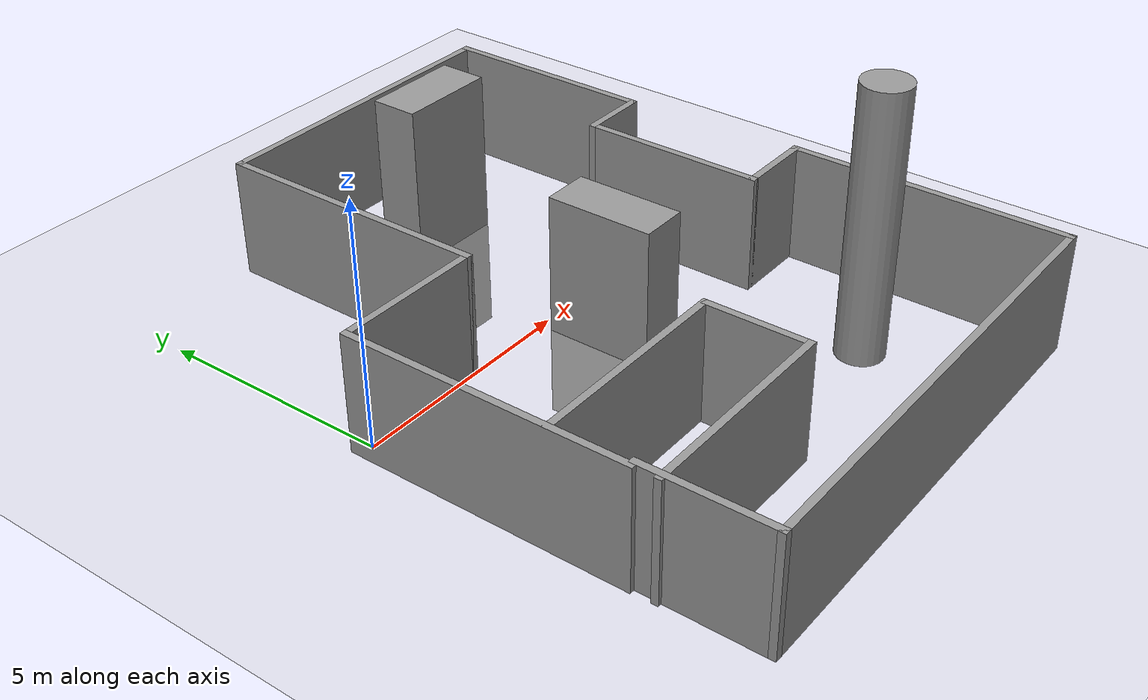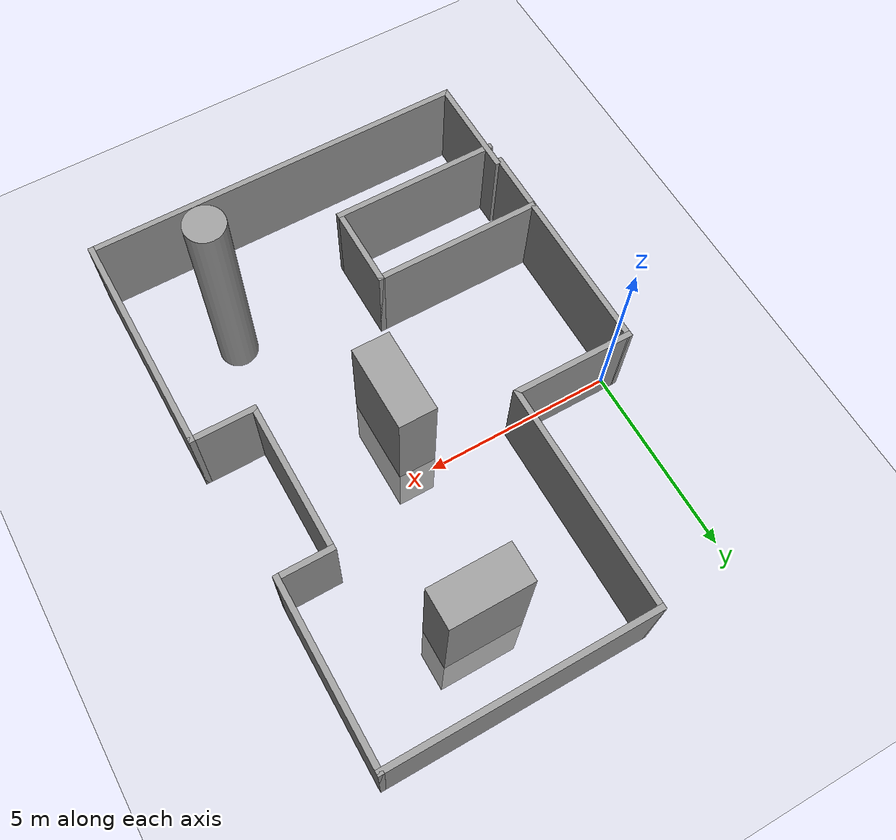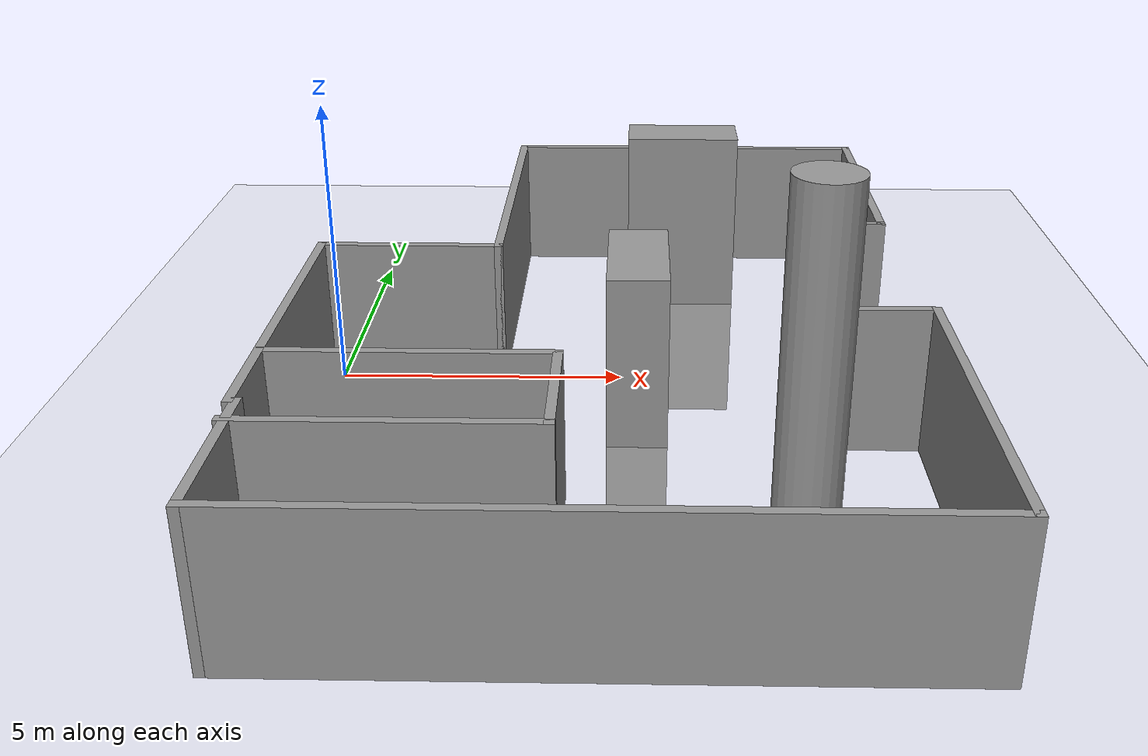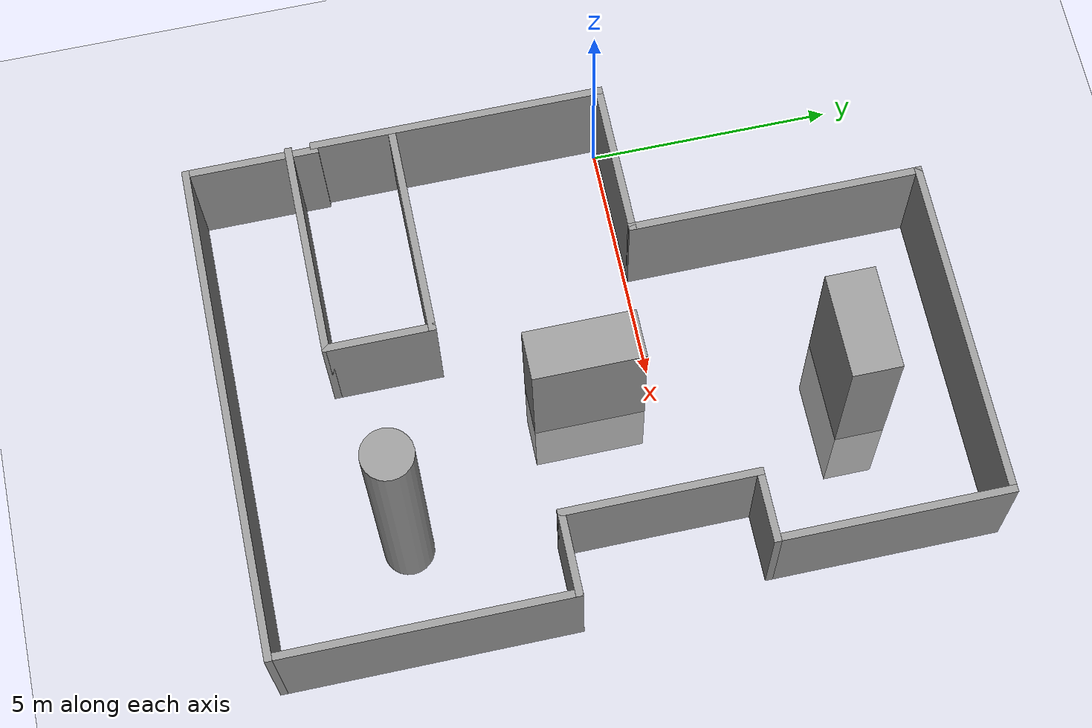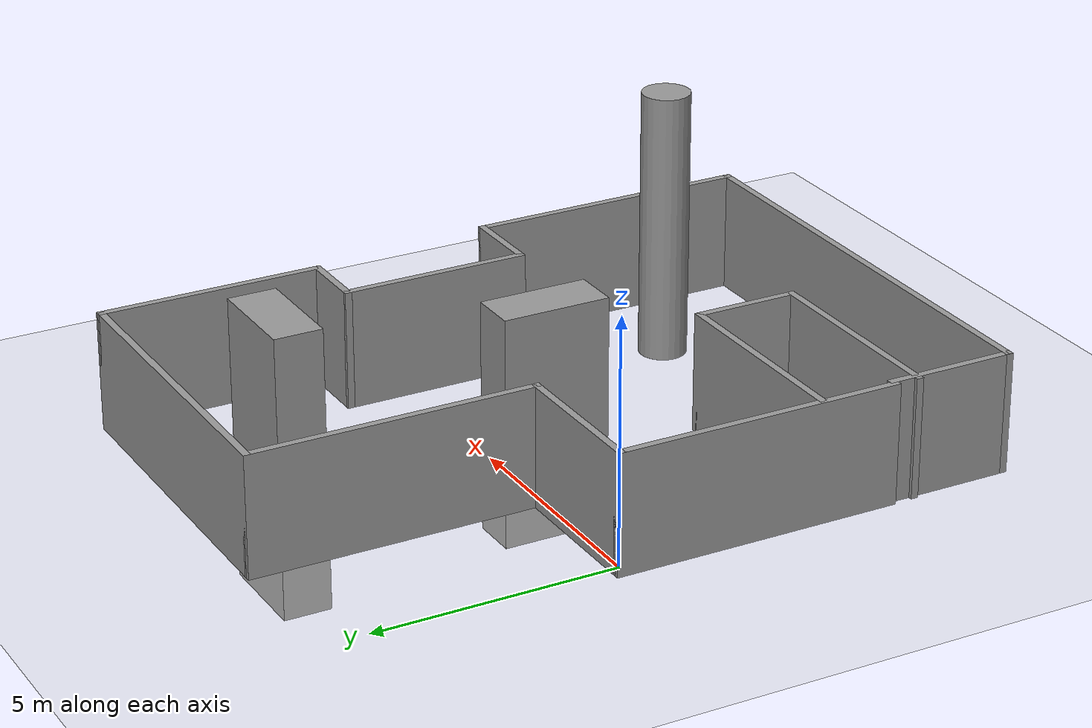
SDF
<sdf version="1.6">
 <world name="default">
  <light name="sun" type="directional">
   <pose>0 0 10 0 -0 0</pose>
   <diffuse>0.8 0.8 0.8 1</diffuse>
   <specular>0.2 0.2 0.2 1</specular>
   <attenuation>
    <range>1000</range>
    <constant>0.9</constant>
    <linear>0.01</linear>
    <quadratic>0.001</quadratic>
   </attenuation>
   <direction>-0.5 0.1 -0.9</direction>
  </light>
  <model name="ground_plane">
   <static>1</static>
   <link name="link">
    <collision name="collision">
     <geometry><plane><normal>0 0 1</normal><size>100 100</size></plane></geometry>
     <surface><friction><ode><mu>100</mu><mu2>50</mu2></ode></friction></surface>
    </collision>
    <visual name="visual">
     <cast_shadows>0</cast_shadows>
     <geometry><plane><normal>0 0 1</normal><size>100 100</size></plane></geometry>
     <material>
      <script><uri>file://media/materials/scripts/gazebo.material</uri><name>Gazebo/Grey</name></script>
     </material>
    </visual>
   </link>
  </model>
  <gravity>0 0 -9.8</gravity>
  <magnetic_field>6e-06 2.3e-05 -4.2e-05</magnetic_field>
  <atmosphere type="adiabatic"/>
  <physics name="default_physics" default="0" type="ode">
   <max_step_size>0.001</max_step_size>
   <real_time_factor>1</real_time_factor>
   <real_time_update_rate>1000</real_time_update_rate>
  </physics>
  <scene><ambient>0.4 0.4 0.4 1</ambient><background>0.7 0.7 0.7 1</background><shadows>1</shadows></scene>
  <spherical_coordinates>
   <surface_model>EARTH_WGS84</surface_model>
   <latitude_deg>0</latitude_deg>
   <longitude_deg>0</longitude_deg>
   <elevation>0</elevation>
   <heading_deg>0</heading_deg>
  </spherical_coordinates>
  <model name="irc_world">
   <pose>4.86 -1.16 0 0 -0 0</pose>
   <link name="Wall_1">
    <collision name="Wall_1_Collision">
     <geometry><box><size>6 0.15 2.5</size></box></geometry>
     <pose>0 0 1.25 0 -0 0</pose>
    </collision>
    <visual name="Wall_1_Visual">
     <pose>0 0 1.25 0 -0 0</pose>
     <geometry><box><size>6 0.15 2.5</size></box></geometry>
     <material>
      <script><uri>file://media/materials/scripts/gazebo.material</uri><name>Gazebo/Grey</name></script>
      <ambient>0 0 0 1</ambient>
     </material>
     <meta><layer>0</layer></meta>
    </visual>
    <pose>-5.1 -1.625 0 0 -0 1.5708</pose>
   </link>
   <link name="Wall_10">
    <collision name="Wall_10_Collision">
     <geometry><box><size>10.25 0.15 2.5</size></box></geometry>
     <pose>0 0 1.25 0 -0 0</pose>
    </collision>
    <visual name="Wall_10_Visual">
     <pose>0 0 1.25 0 -0 0</pose>
     <geometry><box><size>10.25 0.15 2.5</size></box></geometry>
     <material>
      <script><uri>file://media/materials/scripts/gazebo.material</uri><name>Gazebo/Grey</name></script>
      <ambient>0 0 0 1</ambient>
     </material>
     <meta><layer>0</layer></meta>
    </visual>
    <pose>0.05 -7.15 0 0 -0 3.14159</pose>
   </link>
   <link name="Wall_11">
    <collision name="Wall_11_Collision">
     <geometry><box><size>2.75 0.15 2.5</size></box></geometry>
     <pose>0 0 1.25 0 -0 0</pose>
    </collision>
    <visual name="Wall_11_Visual">
     <pose>0 0 1.25 0 -0 0</pose>
     <geometry><box><size>2.75 0.15 2.5</size></box></geometry>
     <material>
      <script><uri>file://media/materials/scripts/gazebo.material</uri><name>Gazebo/Grey</name></script>
      <ambient>0 0 0 1</ambient>
     </material>
     <meta><layer>0</layer></meta>
    </visual>
    <pose>-5 -5.85 0 0 -0 1.5708</pose>
   </link>
   <link name="Wall_14">
    <collision name="Wall_14_Collision">
     <geometry><box><size>4.5 0.15 2.5</size></box></geometry>
     <pose>0 0 1.25 0 -0 0</pose>
    </collision>
    <visual name="Wall_14_Visual">
     <pose>0 0 1.25 0 -0 0</pose>
     <geometry><box><size>4.5 0.15 2.5</size></box></geometry>
     <material>
      <script><uri>file://media/materials/scripts/gazebo.material</uri><name>Gazebo/Grey</name></script>
      <ambient>0 0 0 1</ambient>
     </material>
     <meta><layer>0</layer></meta>
    </visual>
    <pose>-2.90003 -2.9669 0 0 -0 0</pose>
   </link>
   <link name="Wall_15">
    <collision name="Wall_15_Collision">
     <geometry><box><size>2.25 0.15 2.5</size></box></geometry>
     <pose>0 0 1.25 0 -0 0</pose>
    </collision>
    <visual name="Wall_15_Visual">
     <pose>0 0 1.25 0 -0 0</pose>
     <geometry><box><size>2.25 0.15 2.5</size></box></geometry>
     <material>
      <script><uri>file://media/materials/scripts/gazebo.material</uri><name>Gazebo/Grey</name></script>
      <ambient>0 0 0 1</ambient>
     </material>
     <meta><layer>0</layer></meta>
    </visual>
    <pose>-0.725027 -4.0169 0 0 0 -1.5708</pose>
   </link>
   <link name="Wall_16">
    <collision name="Wall_16_Collision">
     <geometry><box><size>4.5 0.15 2.5</size></box></geometry>
     <pose>0 0 1.25 0 -0 0</pose>
    </collision>
    <visual name="Wall_16_Visual">
     <pose>0 0 1.25 0 -0 0</pose>
     <geometry><box><size>4.5 0.15 2.5</size></box></geometry>
     <material>
      <script><uri>file://media/materials/scripts/gazebo.material</uri><name>Gazebo/Grey</name></script>
      <ambient>0 0 0 1</ambient>
     </material>
     <meta><layer>0</layer></meta>
    </visual>
    <pose>-2.90003 -5.0669 0 0 -0 3.14159</pose>
   </link>
   <link name="Wall_2">
    <collision name="Wall_2_Collision">
     <geometry><box><size>3.25 0.15 2.5</size></box></geometry>
     <pose>0 0 1.25 0 -0 0</pose>
    </collision>
    <visual name="Wall_2_Visual">
     <pose>0 0 1.25 0 -0 0</pose>
     <geometry><box><size>3.25 0.15 2.5</size></box></geometry>
     <material>
      <script><uri>file://media/materials/scripts/gazebo.material</uri><name>Gazebo/Grey</name></script>
      <ambient>0 0 0 1</ambient>
     </material>
     <meta><layer>0</layer></meta>
    </visual>
    <pose>-3.55 1.3 0 0 -0 0</pose>
   </link>
   <link name="Wall_3">
    <collision name="Wall_3_Collision">
     <geometry><box><size>6 0.15 2.5</size></box></geometry>
     <pose>0 0 1.25 0 -0 0</pose>
    </collision>
    <visual name="Wall_3_Visual">
     <pose>0 0 1.25 0 -0 0</pose>
     <geometry><box><size>6 0.15 2.5</size></box></geometry>
     <material>
      <script><uri>file://media/materials/scripts/gazebo.material</uri><name>Gazebo/Grey</name></script>
      <ambient>0 0 0 1</ambient>
     </material>
     <meta><layer>0</layer></meta>
    </visual>
    <pose>-2 4.225 0 0 -0 1.5708</pose>
   </link>
   <link name="Wall_4">
    <collision name="Wall_4_Collision">
     <geometry><box><size>7 0.15 2.5</size></box></geometry>
     <pose>0 0 1.25 0 -0 0</pose>
    </collision>
    <visual name="Wall_4_Visual">
     <pose>0 0 1.25 0 -0 0</pose>
     <geometry><box><size>7 0.15 2.5</size></box></geometry>
     <material>
      <script><uri>file://media/materials/scripts/gazebo.material</uri><name>Gazebo/Grey</name></script>
      <ambient>0 0 0 1</ambient>
     </material>
     <meta><layer>0</layer></meta>
    </visual>
    <pose>1.425 7.15 0 0 -0 0</pose>
   </link>
   <link name="Wall_5">
    <collision name="Wall_5_Collision">
     <geometry><box><size>4.75 0.15 2.5</size></box></geometry>
     <pose>0 0 1.25 0 -0 0</pose>
    </collision>
    <visual name="Wall_5_Visual">
     <pose>0 0 1.25 0 -0 0</pose>
     <geometry><box><size>4.75 0.15 2.5</size></box></geometry>
     <material>
      <script><uri>file://media/materials/scripts/gazebo.material</uri><name>Gazebo/Grey</name></script>
      <ambient>0 0 0 1</ambient>
     </material>
     <meta><layer>0</layer></meta>
    </visual>
    <pose>4.85 4.85 0 0 0 -1.5708</pose>
   </link>
   <link name="Wall_6">
    <collision name="Wall_6_Collision">
     <geometry><box><size>1.5 0.15 2.5</size></box></geometry>
     <pose>0 0 1.25 0 -0 0</pose>
    </collision>
    <visual name="Wall_6_Visual">
     <pose>0 0 1.25 0 -0 0</pose>
     <geometry><box><size>1.5 0.15 2.5</size></box></geometry>
     <material>
      <script><uri>file://media/materials/scripts/gazebo.material</uri><name>Gazebo/Grey</name></script>
      <ambient>1 1 1 1</ambient>
     </material>
     <meta><layer>0</layer></meta>
    </visual>
    <pose>4.175 2.55 0 0 -0 3.14159</pose>
   </link>
   <link name="Wall_7">
    <collision name="Wall_7_Collision">
     <geometry><box><size>4 0.15 2.5</size></box></geometry>
     <pose>0 0 1.25 0 -0 0</pose>
    </collision>
    <visual name="Wall_7_Visual">
     <pose>0 0 1.25 0 -0 0</pose>
     <geometry><box><size>4 0.15 2.5</size></box></geometry>
     <material>
      <script><uri>file://media/materials/scripts/gazebo.material</uri><name>Gazebo/Grey</name></script>
      <ambient>0 0 0 1</ambient>
     </material>
     <meta><layer>0</layer></meta>
    </visual>
    <pose>3.5 0.625 0 0 0 -1.5708</pose>
   </link>
   <link name="Wall_8">
    <collision name="Wall_8_Collision">
     <geometry><box><size>1.75 0.15 2.5</size></box></geometry>
     <pose>0 0 1.25 0 -0 0</pose>
    </collision>
    <visual name="Wall_8_Visual">
     <pose>0 0 1.25 0 -0 0</pose>
     <geometry><box><size>1.75 0.15 2.5</size></box></geometry>
     <material>
      <script><uri>file://media/materials/scripts/gazebo.material</uri><name>Gazebo/Grey</name></script>
      <ambient>0 0 0 1</ambient>
     </material>
     <meta><layer>0</layer></meta>
    </visual>
    <pose>4.3 -1.3 0 0 -0 0</pose>
   </link>
   <link name="Wall_9">
    <collision name="Wall_9_Collision">
     <geometry><box><size>6 0.15 2.5</size></box></geometry>
     <pose>0 0 1.25 0 -0 0</pose>
    </collision>
    <visual name="Wall_9_Visual">
     <pose>0 0 1.25 0 -0 0</pose>
     <geometry><box><size>6 0.15 2.5</size></box></geometry>
     <material>
      <script><uri>file://media/materials/scripts/gazebo.material</uri><name>Gazebo/Grey</name></script>
      <ambient>1 1 1 1</ambient>
     </material>
     <meta><layer>0</layer></meta>
    </visual>
    <pose>5.1 -4.225 0 0 0 -1.5708</pose>
   </link>
   <static>1</static>
  </model>
  <model name="unit_cylinder_evan">
   <link name="link">
    <inertial>
     <mass>5.66475</mass>
     <inertia><ixx>15.5022</ixx><ixy>0</ixy><ixz>0</ixz><iyy>15.5022</iyy><iyz>0</iyz><izz>0.708094</izz></inertia>
    </inertial>
    <visual name="visual">
     <geometry><cylinder><radius>0.5</radius><length>5.66476</length></cylinder></geometry>
     <material>
      <script><name>Gazebo/Grey</name><uri>file://media/materials/scripts/gazebo.material</uri></script>
      <ambient>0.3 0.3 0.3 1</ambient>
      <diffuse>0.7 0.7 0.7 1</diffuse>
      <specular>0.01 0.01 0.01 1</specular>
      <emissive>0 0 0 1</emissive>
      <shader type="vertex"><normal_map>__default__</normal_map></shader>
     </material>
    </visual>
    <collision name="collision">
     <geometry><cylinder><radius>0.5</radius><length>5.66476</length></cylinder></geometry>
     <surface>
      <friction>
       <ode><mu>1</mu><mu2>1</mu2><fdir1>0 0 0</fdir1><slip1>0</slip1><slip2>0</slip2></ode>
       <torsional>
        <coefficient>1</coefficient>
        <patch_radius>0</patch_radius>
        <surface_radius>0</surface_radius>
        <use_patch_radius>1</use_patch_radius>
        <ode><slip>0</slip></ode>
       </torsional>
      </friction>
      <bounce><restitution_coefficient>0</restitution_coefficient><threshold>1e+06</threshold></bounce>
      <contact>
       <collide_without_contact>0</collide_without_contact>
       <collide_without_contact_bitmask>1</collide_without_contact_bitmask>
       <collide_bitmask>1</collide_bitmask>
       <ode>
        <soft_cfm>0</soft_cfm>
        <soft_erp>0.2</soft_erp>
        <kp>1e+13</kp>
        <kd>1</kd>
        <max_vel>0.01</max_vel>
        <min_depth>0</min_depth>
       </ode>
       <bullet>
        <split_impulse>1</split_impulse>
        <split_impulse_penetration_threshold>-0.01</split_impulse_penetration_threshold>
        <soft_cfm>0</soft_cfm>
        <soft_erp>0.2</soft_erp>
        <kp>1e+13</kp>
        <kd>1</kd>
       </bullet>
      </contact>
     </surface>
    </collision>
   </link>
   <static>0</static>
   <pose>7.69009 -5.41105 2.83237 0 0 -2e-06</pose>
  </model>
  <model name="a_box">
   <link name="link_0">
    <pose>0.43035 2.62467 0 0 -0 0</pose>
    <inertial>
     <mass>12.4039</mass>
     <inertia><ixx>36.9232</ixx><ixy>0</ixy><ixz>0</ixz><iyy>40.4699</iyy><iyz>0</iyz><izz>5.61401</izz></inertia>
    </inertial>
    <visual name="visual">
     <geometry><box><size>2.10504 1 5.89246</size></box></geometry>
     <material>
      <lighting>1</lighting>
      <script><uri>file://media/materials/scripts/gazebo.material</uri><name>Gazebo/Grey</name></script>
      <ambient>0.3 0.3 0.3 1</ambient>
      <diffuse>0.7 0.7 0.7 1</diffuse>
      <specular>0.01 0.01 0.01 1</specular>
      <emissive>0 0 0 1</emissive>
      <shader type="vertex"><normal_map>__default__</normal_map></shader>
     </material>
    </visual>
    <collision name="collision">
     <geometry><box><size>2.10504 1 5.89246</size></box></geometry>
     <surface>
      <friction>
       <ode><mu>1</mu><mu2>1</mu2><fdir1>0 0 0</fdir1><slip1>0</slip1><slip2>0</slip2></ode>
       <torsional>
        <coefficient>1</coefficient>
        <patch_radius>0</patch_radius>
        <surface_radius>0</surface_radius>
        <use_patch_radius>1</use_patch_radius>
        <ode><slip>0</slip></ode>
       </torsional>
      </friction>
      <bounce><restitution_coefficient>0</restitution_coefficient><threshold>1e+06</threshold></bounce>
      <contact>
       <collide_without_contact>0</collide_without_contact>
       <collide_without_contact_bitmask>1</collide_without_contact_bitmask>
       <collide_bitmask>1</collide_bitmask>
       <ode>
        <soft_cfm>0</soft_cfm>
        <soft_erp>0.2</soft_erp>
        <kp>1e+13</kp>
        <kd>1</kd>
        <max_vel>0.01</max_vel>
        <min_depth>0</min_depth>
       </ode>
       <bullet>
        <split_impulse>1</split_impulse>
        <split_impulse_penetration_threshold>-0.01</split_impulse_penetration_threshold>
        <soft_cfm>0</soft_cfm>
        <soft_erp>0.2</soft_erp>
        <kp>1e+13</kp>
        <kd>1</kd>
       </bullet>
      </contact>
     </surface>
    </collision>
   </link>
   <link name="link_2">
    <pose>-0.430355 -2.62467 0 0 -0 0</pose>
    <inertial>
     <mass>11.0475</mass>
     <inertia><ixx>26.6284</ixx><ixy>0</ixy><ixz>0</ixz><iyy>22.827</iyy><iyz>0</iyz><izz>5.64269</izz></inertia>
    </inertial>
    <visual name="visual">
     <geometry><box><size>1 2.26473 4.87801</size></box></geometry>
     <material>
      <lighting>1</lighting>
      <script><uri>file://media/materials/scripts/gazebo.material</uri><name>Gazebo/Grey</name></script>
      <ambient>0.3 0.3 0.3 1</ambient>
      <diffuse>0.7 0.7 0.7 1</diffuse>
      <specular>0.01 0.01 0.01 1</specular>
      <emissive>0 0 0 1</emissive>
     </material>
    </visual>
    <collision name="collision">
     <geometry><box><size>1 2.26473 4.87801</size></box></geometry>
     <surface>
      <friction>
       <ode><mu>1</mu><mu2>1</mu2><fdir1>0 0 0</fdir1><slip1>0</slip1><slip2>0</slip2></ode>
       <torsional>
        <coefficient>1</coefficient>
        <patch_radius>0</patch_radius>
        <surface_radius>0</surface_radius>
        <use_patch_radius>1</use_patch_radius>
        <ode><slip>0</slip></ode>
       </torsional>
      </friction>
      <bounce><restitution_coefficient>0</restitution_coefficient><threshold>1e+06</threshold></bounce>
      <contact>
       <collide_without_contact>0</collide_without_contact>
       <collide_without_contact_bitmask>1</collide_without_contact_bitmask>
       <collide_bitmask>1</collide_bitmask>
       <ode>
        <soft_cfm>0</soft_cfm>
        <soft_erp>0.2</soft_erp>
        <kp>1e+13</kp>
        <kd>1</kd>
        <max_vel>0.01</max_vel>
        <min_depth>0</min_depth>
       </ode>
       <bullet>
        <split_impulse>1</split_impulse>
        <split_impulse_penetration_threshold>-0.01</split_impulse_penetration_threshold>
        <soft_cfm>0</soft_cfm>
        <soft_erp>0.2</soft_erp>
        <kp>1e+13</kp>
        <kd>1</kd>
       </bullet>
      </contact>
     </surface>
    </collision>
   </link>
   <static>0</static>
   <pose>5.72619 1.27207 0.5 0 -0 0</pose>
  </model>
 </world>
</sdf>
